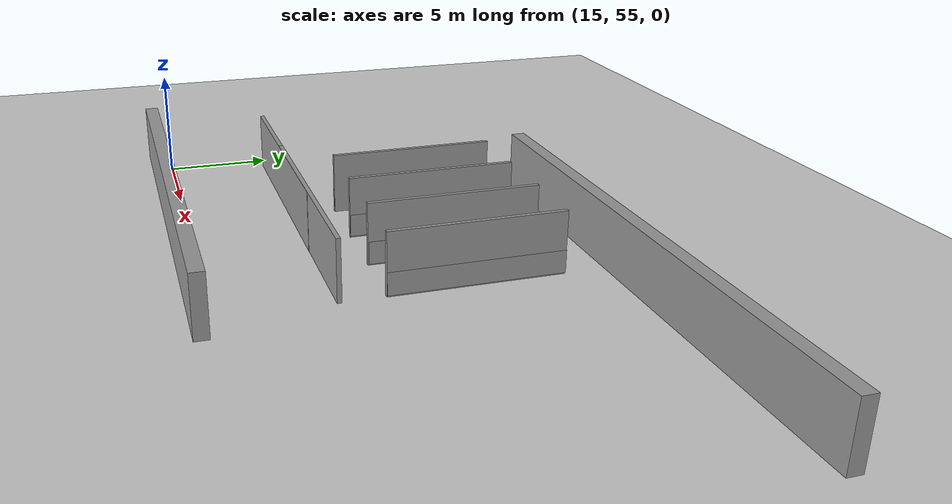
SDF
<sdf version="1.7">
 <world name="default">
  <model name="ground_plane">
   <static>1</static>
   <link name="link">
    <collision name="collision">
     <geometry><plane><normal>0 0 1</normal><size>100 100</size></plane></geometry>
     <surface><friction><ode><mu>100</mu><mu2>50</mu2></ode></friction></surface>
    </collision>
    <visual name="visual">
     <cast_shadows>0</cast_shadows>
     <geometry><plane><normal>0 0 1</normal><size>100 100</size></plane></geometry>
     <material>
      <script><uri>file://media/materials/scripts/gazebo.material</uri><name>Gazebo/Grey</name></script>
     </material>
    </visual>
   </link>
  </model>
  <model name="grey_wall_long_term">
   <link name="link">
    <pose>-1.74587 -0.378849 1.37589 0 -0 0</pose>
    <inertial>
     <inertia><ixx>0</ixx><ixy>0</ixy><ixz>0</ixz><iyy>0</iyy><iyz>0</iyz><izz>0</izz></inertia>
     <mass>0</mass>
    </inertial>
    <visual name="visual">
     <cast_shadows>0</cast_shadows>
     <geometry><box><size>22.1596 0.642976 2.8</size></box></geometry>
     <material>
      <script>
       <uri>model://grey_wall/materials/scripts</uri>
       <uri>model://grey_wall/materials/textures</uri>
       <name>vrc/grey_wall</name>
      </script>
      <shader type="pixel"><normal_map>__default__</normal_map></shader>
      <ambient>1 1 1 1</ambient>
      <diffuse>1 1 1 1</diffuse>
      <specular>0 0 0 1</specular>
      <emissive>0 0 0 1</emissive>
     </material>
    </visual>
    <collision name="collision">
     <geometry><box><size>22.1596 0.642976 2.8</size></box></geometry>
     <surface>
      <friction>
       <ode><mu>1</mu><mu2>1</mu2><fdir1>0 0 0</fdir1><slip1>0</slip1><slip2>0</slip2></ode>
       <torsional>
        <coefficient>1</coefficient>
        <patch_radius>0</patch_radius>
        <surface_radius>0</surface_radius>
        <use_patch_radius>1</use_patch_radius>
        <ode><slip>0</slip></ode>
       </torsional>
      </friction>
      <bounce><restitution_coefficient>0</restitution_coefficient><threshold>1e+06</threshold></bounce>
      <contact>
       <collide_without_contact>0</collide_without_contact>
       <collide_without_contact_bitmask>1</collide_without_contact_bitmask>
       <collide_bitmask>1</collide_bitmask>
       <ode>
        <soft_cfm>0</soft_cfm>
        <soft_erp>0.2</soft_erp>
        <kp>1e+13</kp>
        <kd>1</kd>
        <max_vel>0.01</max_vel>
        <min_depth>0</min_depth>
       </ode>
       <bullet>
        <split_impulse>1</split_impulse>
        <split_impulse_penetration_threshold>-0.01</split_impulse_penetration_threshold>
        <soft_cfm>0</soft_cfm>
        <soft_erp>0.2</soft_erp>
        <kp>1e+13</kp>
        <kd>1</kd>
       </bullet>
      </contact>
     </surface>
    </collision>
   </link>
   <static>1</static>
   <pose>25.4016 54.6879 0 0 -0 0</pose>
  </model>
  <model name="grey_wall_long_2_clone">
   <link name="link">
    <pose>0 0 1.37589 0 -0 0</pose>
    <inertial>
     <inertia><ixx>0</ixx><ixy>0</ixy><ixz>0</ixz><iyy>0</iyy><iyz>0</iyz><izz>0</izz></inertia>
     <mass>0</mass>
    </inertial>
    <visual name="visual">
     <cast_shadows>0</cast_shadows>
     <geometry><box><size>25.8815 0.642976 2.8</size></box></geometry>
     <material>
      <script>
       <uri>model://grey_wall/materials/scripts</uri>
       <uri>model://grey_wall/materials/textures</uri>
       <name>vrc/grey_wall</name>
      </script>
      <shader type="pixel"><normal_map>__default__</normal_map></shader>
      <ambient>1 1 1 1</ambient>
      <diffuse>1 1 1 1</diffuse>
      <specular>0 0 0 1</specular>
      <emissive>0 0 0 1</emissive>
     </material>
    </visual>
    <collision name="collision">
     <geometry><box><size>25.8815 0.642976 2.8</size></box></geometry>
     <surface>
      <friction>
       <ode><mu>1</mu><mu2>1</mu2><fdir1>0 0 0</fdir1><slip1>0</slip1><slip2>0</slip2></ode>
       <torsional>
        <coefficient>1</coefficient>
        <patch_radius>0</patch_radius>
        <surface_radius>0</surface_radius>
        <use_patch_radius>1</use_patch_radius>
        <ode><slip>0</slip></ode>
       </torsional>
      </friction>
      <bounce><restitution_coefficient>0</restitution_coefficient><threshold>1e+06</threshold></bounce>
      <contact>
       <collide_without_contact>0</collide_without_contact>
       <collide_without_contact_bitmask>1</collide_without_contact_bitmask>
       <collide_bitmask>1</collide_bitmask>
       <ode>
        <soft_cfm>0</soft_cfm>
        <soft_erp>0.2</soft_erp>
        <kp>1e+13</kp>
        <kd>1</kd>
        <max_vel>0.01</max_vel>
        <min_depth>0</min_depth>
       </ode>
       <bullet>
        <split_impulse>1</split_impulse>
        <split_impulse_penetration_threshold>-0.01</split_impulse_penetration_threshold>
        <soft_cfm>0</soft_cfm>
        <soft_erp>0.2</soft_erp>
        <kp>1e+13</kp>
        <kd>1</kd>
       </bullet>
      </contact>
     </surface>
    </collision>
   </link>
   <static>1</static>
   <pose>35.559 71.815 0 0 -0 0</pose>
  </model>
  <model name="grey_wall_12m">
   <link name="link">
    <pose>0.289112 -0.003891 1.4 0 -0 0</pose>
    <inertial>
     <inertia><ixx>0</ixx><ixy>0</ixy><ixz>0</ixz><iyy>0</iyy><iyz>0</iyz><izz>0</izz></inertia>
     <mass>0</mass>
    </inertial>
    <visual name="visual">
     <cast_shadows>0</cast_shadows>
     <geometry><box><size>12.0527 0.2 2.8</size></box></geometry>
     <material>
      <script>
       <uri>model://grey_wall/materials/scripts</uri>
       <uri>model://grey_wall/materials/textures</uri>
       <name>vrc/grey_wall</name>
      </script>
      <shader type="pixel"/>
      <ambient>1 1 1 1</ambient>
      <diffuse>1 1 1 1</diffuse>
      <specular>0 0 0 1</specular>
      <emissive>0 0 0 1</emissive>
     </material>
    </visual>
    <collision name="collision">
     <geometry><box><size>12.0527 0.2 2.8</size></box></geometry>
     <surface>
      <friction>
       <ode><mu>1</mu><mu2>1</mu2><fdir1>0 0 0</fdir1><slip1>0</slip1><slip2>0</slip2></ode>
       <torsional>
        <coefficient>1</coefficient>
        <patch_radius>0</patch_radius>
        <surface_radius>0</surface_radius>
        <use_patch_radius>1</use_patch_radius>
        <ode><slip>0</slip></ode>
       </torsional>
      </friction>
      <bounce><restitution_coefficient>0</restitution_coefficient><threshold>1e+06</threshold></bounce>
      <contact>
       <collide_without_contact>0</collide_without_contact>
       <collide_without_contact_bitmask>1</collide_without_contact_bitmask>
       <collide_bitmask>1</collide_bitmask>
       <ode>
        <soft_cfm>0</soft_cfm>
        <soft_erp>0.2</soft_erp>
        <kp>1e+13</kp>
        <kd>1</kd>
        <max_vel>0.01</max_vel>
        <min_depth>0</min_depth>
       </ode>
       <bullet>
        <split_impulse>1</split_impulse>
        <split_impulse_penetration_threshold>-0.01</split_impulse_penetration_threshold>
        <soft_cfm>0</soft_cfm>
        <soft_erp>0.2</soft_erp>
        <kp>1e+13</kp>
        <kd>1</kd>
       </bullet>
      </contact>
     </surface>
    </collision>
   </link>
   <static>1</static>
   <pose>21.5763 59.8868 0 0 -0 0</pose>
  </model>
  <model name="grey_wall_12m_clone">
   <link name="link">
    <pose>0.289112 -0.003891 1.4 0 -0 0</pose>
    <inertial>
     <inertia><ixx>0</ixx><ixy>0</ixy><ixz>0</ixz><iyy>0</iyy><iyz>0</iyz><izz>0</izz></inertia>
     <mass>0</mass>
    </inertial>
    <visual name="visual">
     <cast_shadows>0</cast_shadows>
     <geometry><box><size>12.0527 0.2 2.8</size></box></geometry>
     <material>
      <script>
       <uri>model://grey_wall/materials/scripts</uri>
       <uri>model://grey_wall/materials/textures</uri>
       <name>vrc/grey_wall</name>
      </script>
      <shader type="pixel"/>
      <ambient>1 1 1 1</ambient>
      <diffuse>1 1 1 1</diffuse>
      <specular>0 0 0 1</specular>
      <emissive>0 0 0 1</emissive>
     </material>
    </visual>
    <collision name="collision">
     <geometry><box><size>12.0527 0.2 2.8</size></box></geometry>
     <surface>
      <friction>
       <ode><mu>1</mu><mu2>1</mu2><fdir1>0 0 0</fdir1><slip1>0</slip1><slip2>0</slip2></ode>
       <torsional>
        <coefficient>1</coefficient>
        <patch_radius>0</patch_radius>
        <surface_radius>0</surface_radius>
        <use_patch_radius>1</use_patch_radius>
        <ode><slip>0</slip></ode>
       </torsional>
      </friction>
      <bounce><restitution_coefficient>0</restitution_coefficient><threshold>1e+06</threshold></bounce>
      <contact>
       <collide_without_contact>0</collide_without_contact>
       <collide_without_contact_bitmask>1</collide_without_contact_bitmask>
       <collide_bitmask>1</collide_bitmask>
       <ode>
        <soft_cfm>0</soft_cfm>
        <soft_erp>0.2</soft_erp>
        <kp>1e+13</kp>
        <kd>1</kd>
        <max_vel>0.01</max_vel>
        <min_depth>0</min_depth>
       </ode>
       <bullet>
        <split_impulse>1</split_impulse>
        <split_impulse_penetration_threshold>-0.01</split_impulse_penetration_threshold>
        <soft_cfm>0</soft_cfm>
        <soft_erp>0.2</soft_erp>
        <kp>1e+13</kp>
        <kd>1</kd>
       </bullet>
      </contact>
     </surface>
    </collision>
   </link>
   <static>1</static>
   <pose>26.9249 59.895 0 0 -0 0</pose>
  </model>
  <model name="grey_wall_low_clone_0">
   <link name="link">
    <pose>0.546134 -0.568384 0.521109 0 -0 0</pose>
    <inertial>
     <inertia><ixx>0</ixx><ixy>0</ixy><ixz>0</ixz><iyy>0</iyy><iyz>0</iyz><izz>0</izz></inertia>
     <mass>0</mass>
    </inertial>
    <visual name="visual">
     <cast_shadows>0</cast_shadows>
     <geometry><box><size>7.82417 0.2 1.03493</size></box></geometry>
     <material>
      <script>
       <uri>model://grey_wall/materials/scripts</uri>
       <uri>model://grey_wall/materials/textures</uri>
       <name>vrc/grey_wall</name>
      </script>
      <shader type="pixel"/>
      <ambient>1 1 1 1</ambient>
      <diffuse>1 1 1 1</diffuse>
      <specular>0 0 0 1</specular>
      <emissive>0 0 0 1</emissive>
     </material>
    </visual>
    <collision name="collision">
     <geometry><box><size>7.82417 0.2 1.03493</size></box></geometry>
     <surface>
      <friction>
       <ode><mu>1</mu><mu2>1</mu2><fdir1>0 0 0</fdir1><slip1>0</slip1><slip2>0</slip2></ode>
       <torsional>
        <coefficient>1</coefficient>
        <patch_radius>0</patch_radius>
        <surface_radius>0</surface_radius>
        <use_patch_radius>1</use_patch_radius>
        <ode><slip>0</slip></ode>
       </torsional>
      </friction>
      <bounce><restitution_coefficient>0</restitution_coefficient><threshold>1e+06</threshold></bounce>
      <contact>
       <collide_without_contact>0</collide_without_contact>
       <collide_without_contact_bitmask>1</collide_without_contact_bitmask>
       <collide_bitmask>1</collide_bitmask>
       <ode>
        <soft_cfm>0</soft_cfm>
        <soft_erp>0.2</soft_erp>
        <kp>1e+13</kp>
        <kd>1</kd>
        <max_vel>0.01</max_vel>
        <min_depth>0</min_depth>
       </ode>
       <bullet>
        <split_impulse>1</split_impulse>
        <split_impulse_penetration_threshold>-0.01</split_impulse_penetration_threshold>
        <soft_cfm>0</soft_cfm>
        <soft_erp>0.2</soft_erp>
        <kp>1e+13</kp>
        <kd>1</kd>
       </bullet>
      </contact>
     </surface>
    </collision>
   </link>
   <static>1</static>
   <pose>23.9356 66.4695 -0 0 0 -1.56746</pose>
  </model>
  <model name="grey_wall_low_clone_1">
   <link name="link">
    <pose>0.546134 -0.568384 0.521109 0 -0 0</pose>
    <inertial>
     <inertia><ixx>0</ixx><ixy>0</ixy><ixz>0</ixz><iyy>0</iyy><iyz>0</iyz><izz>0</izz></inertia>
     <mass>0</mass>
    </inertial>
    <visual name="visual">
     <cast_shadows>0</cast_shadows>
     <geometry><box><size>7.82417 0.2 1.03493</size></box></geometry>
     <material>
      <script>
       <uri>model://grey_wall/materials/scripts</uri>
       <uri>model://grey_wall/materials/textures</uri>
       <name>vrc/grey_wall</name>
      </script>
      <shader type="pixel"/>
      <ambient>1 1 1 1</ambient>
      <diffuse>1 1 1 1</diffuse>
      <specular>0 0 0 1</specular>
      <emissive>0 0 0 1</emissive>
     </material>
    </visual>
    <collision name="collision">
     <geometry><box><size>7.82417 0.2 1.03493</size></box></geometry>
     <surface>
      <friction>
       <ode><mu>1</mu><mu2>1</mu2><fdir1>0 0 0</fdir1><slip1>0</slip1><slip2>0</slip2></ode>
       <torsional>
        <coefficient>1</coefficient>
        <patch_radius>0</patch_radius>
        <surface_radius>0</surface_radius>
        <use_patch_radius>1</use_patch_radius>
        <ode><slip>0</slip></ode>
       </torsional>
      </friction>
      <bounce><restitution_coefficient>0</restitution_coefficient><threshold>1e+06</threshold></bounce>
      <contact>
       <collide_without_contact>0</collide_without_contact>
       <collide_without_contact_bitmask>1</collide_without_contact_bitmask>
       <collide_bitmask>1</collide_bitmask>
       <ode>
        <soft_cfm>0</soft_cfm>
        <soft_erp>0.2</soft_erp>
        <kp>1e+13</kp>
        <kd>1</kd>
        <max_vel>0.01</max_vel>
        <min_depth>0</min_depth>
       </ode>
       <bullet>
        <split_impulse>1</split_impulse>
        <split_impulse_penetration_threshold>-0.01</split_impulse_penetration_threshold>
        <soft_cfm>0</soft_cfm>
        <soft_erp>0.2</soft_erp>
        <kp>1e+13</kp>
        <kd>1</kd>
       </bullet>
      </contact>
     </surface>
    </collision>
   </link>
   <static>1</static>
   <pose>27.2521 66.4319 -0 0 0 -1.56746</pose>
  </model>
  <model name="grey_wall_low_clone_2">
   <link name="link">
    <pose>0.546134 -0.568384 0.521109 0 -0 0</pose>
    <inertial>
     <inertia><ixx>0</ixx><ixy>0</ixy><ixz>0</ixz><iyy>0</iyy><iyz>0</iyz><izz>0</izz></inertia>
     <mass>0</mass>
    </inertial>
    <visual name="visual">
     <cast_shadows>0</cast_shadows>
     <geometry><box><size>7.82417 0.2 1.03493</size></box></geometry>
     <material>
      <script>
       <uri>model://grey_wall/materials/scripts</uri>
       <uri>model://grey_wall/materials/textures</uri>
       <name>vrc/grey_wall</name>
      </script>
      <shader type="pixel"/>
      <ambient>1 1 1 1</ambient>
      <diffuse>1 1 1 1</diffuse>
      <specular>0 0 0 1</specular>
      <emissive>0 0 0 1</emissive>
     </material>
    </visual>
    <collision name="collision">
     <geometry><box><size>7.82417 0.2 1.03493</size></box></geometry>
     <surface>
      <friction>
       <ode><mu>1</mu><mu2>1</mu2><fdir1>0 0 0</fdir1><slip1>0</slip1><slip2>0</slip2></ode>
       <torsional>
        <coefficient>1</coefficient>
        <patch_radius>0</patch_radius>
        <surface_radius>0</surface_radius>
        <use_patch_radius>1</use_patch_radius>
        <ode><slip>0</slip></ode>
       </torsional>
      </friction>
      <bounce><restitution_coefficient>0</restitution_coefficient><threshold>1e+06</threshold></bounce>
      <contact>
       <collide_without_contact>0</collide_without_contact>
       <collide_without_contact_bitmask>1</collide_without_contact_bitmask>
       <collide_bitmask>1</collide_bitmask>
       <ode>
        <soft_cfm>0</soft_cfm>
        <soft_erp>0.2</soft_erp>
        <kp>1e+13</kp>
        <kd>1</kd>
        <max_vel>0.01</max_vel>
        <min_depth>0</min_depth>
       </ode>
       <bullet>
        <split_impulse>1</split_impulse>
        <split_impulse_penetration_threshold>-0.01</split_impulse_penetration_threshold>
        <soft_cfm>0</soft_cfm>
        <soft_erp>0.2</soft_erp>
        <kp>1e+13</kp>
        <kd>1</kd>
       </bullet>
      </contact>
     </surface>
    </collision>
   </link>
   <static>1</static>
   <pose>30.4505 66.4333 -0 0 0 -1.56746</pose>
  </model>
  <model name="grey_wall_low_clone_3">
   <link name="link">
    <pose>0.546134 -0.568384 0.521109 0 -0 0</pose>
    <inertial>
     <inertia><ixx>0</ixx><ixy>0</ixy><ixz>0</ixz><iyy>0</iyy><iyz>0</iyz><izz>0</izz></inertia>
     <mass>0</mass>
    </inertial>
    <visual name="visual">
     <cast_shadows>0</cast_shadows>
     <geometry><box><size>7.82417 0.2 1.03493</size></box></geometry>
     <material>
      <script>
       <uri>model://grey_wall/materials/scripts</uri>
       <uri>model://grey_wall/materials/textures</uri>
       <name>vrc/grey_wall</name>
      </script>
      <shader type="pixel"/>
      <ambient>1 1 1 1</ambient>
      <diffuse>1 1 1 1</diffuse>
      <specular>0 0 0 1</specular>
      <emissive>0 0 0 1</emissive>
     </material>
    </visual>
    <collision name="collision">
     <geometry><box><size>7.82417 0.2 1.03493</size></box></geometry>
     <surface>
      <friction>
       <ode><mu>1</mu><mu2>1</mu2><fdir1>0 0 0</fdir1><slip1>0</slip1><slip2>0</slip2></ode>
       <torsional>
        <coefficient>1</coefficient>
        <patch_radius>0</patch_radius>
        <surface_radius>0</surface_radius>
        <use_patch_radius>1</use_patch_radius>
        <ode><slip>0</slip></ode>
       </torsional>
      </friction>
      <bounce><restitution_coefficient>0</restitution_coefficient><threshold>1e+06</threshold></bounce>
      <contact>
       <collide_without_contact>0</collide_without_contact>
       <collide_without_contact_bitmask>1</collide_without_contact_bitmask>
       <collide_bitmask>1</collide_bitmask>
       <ode>
        <soft_cfm>0</soft_cfm>
        <soft_erp>0.2</soft_erp>
        <kp>1e+13</kp>
        <kd>1</kd>
        <max_vel>0.01</max_vel>
        <min_depth>0</min_depth>
       </ode>
       <bullet>
        <split_impulse>1</split_impulse>
        <split_impulse_penetration_threshold>-0.01</split_impulse_penetration_threshold>
        <soft_cfm>0</soft_cfm>
        <soft_erp>0.2</soft_erp>
        <kp>1e+13</kp>
        <kd>1</kd>
       </bullet>
      </contact>
     </surface>
    </collision>
   </link>
   <static>1</static>
   <pose>33.621 66.3367 -0 0 0 -1.56746</pose>
  </model>
  <model name="grey_wall_high_clone_0">
   <link name="link">
    <pose>0.546134 -0.568384 0.521109 0 -0 0</pose>
    <inertial>
     <inertia><ixx>0</ixx><ixy>0</ixy><ixz>0</ixz><iyy>0</iyy><iyz>0</iyz><izz>0</izz></inertia>
     <mass>0</mass>
    </inertial>
    <visual name="visual">
     <cast_shadows>0</cast_shadows>
     <geometry><box><size>7.82417 0.2 4.57376</size></box></geometry>
     <material>
      <script>
       <uri>model://grey_wall/materials/scripts</uri>
       <uri>model://grey_wall/materials/textures</uri>
       <name>vrc/grey_wall</name>
      </script>
      <shader type="pixel"/>
      <ambient>1 1 1 1</ambient>
      <diffuse>1 1 1 1</diffuse>
      <specular>0 0 0 1</specular>
      <emissive>0 0 0 1</emissive>
     </material>
    </visual>
    <collision name="collision">
     <geometry><box><size>7.82417 0.2 4.57376</size></box></geometry>
     <surface>
      <friction>
       <ode><mu>1</mu><mu2>1</mu2><fdir1>0 0 0</fdir1><slip1>0</slip1><slip2>0</slip2></ode>
       <torsional>
        <coefficient>1</coefficient>
        <patch_radius>0</patch_radius>
        <surface_radius>0</surface_radius>
        <use_patch_radius>1</use_patch_radius>
        <ode><slip>0</slip></ode>
       </torsional>
      </friction>
      <bounce><restitution_coefficient>0</restitution_coefficient><threshold>1e+06</threshold></bounce>
      <contact>
       <collide_without_contact>0</collide_without_contact>
       <collide_without_contact_bitmask>1</collide_without_contact_bitmask>
       <collide_bitmask>1</collide_bitmask>
       <ode>
        <soft_cfm>0</soft_cfm>
        <soft_erp>0.2</soft_erp>
        <kp>1e+13</kp>
        <kd>1</kd>
        <max_vel>0.01</max_vel>
        <min_depth>0</min_depth>
       </ode>
       <bullet>
        <split_impulse>1</split_impulse>
        <split_impulse_penetration_threshold>-0.01</split_impulse_penetration_threshold>
        <soft_cfm>0</soft_cfm>
        <soft_erp>0.2</soft_erp>
        <kp>1e+13</kp>
        <kd>1</kd>
       </bullet>
      </contact>
     </surface>
    </collision>
   </link>
   <static>1</static>
   <pose>23.9508 66.4756 0 0 0 -1.56746</pose>
  </model>
  <model name="grey_wall_high_clone_1">
   <link name="link">
    <pose>0.546134 -0.568384 0.521109 0 -0 0</pose>
    <inertial>
     <inertia><ixx>0</ixx><ixy>0</ixy><ixz>0</ixz><iyy>0</iyy><iyz>0</iyz><izz>0</izz></inertia>
     <mass>0</mass>
    </inertial>
    <visual name="visual">
     <cast_shadows>0</cast_shadows>
     <geometry><box><size>7.82417 0.2 4.57376</size></box></geometry>
     <material>
      <script>
       <uri>model://grey_wall/materials/scripts</uri>
       <uri>model://grey_wall/materials/textures</uri>
       <name>vrc/grey_wall</name>
      </script>
      <shader type="pixel"/>
      <ambient>1 1 1 1</ambient>
      <diffuse>1 1 1 1</diffuse>
      <specular>0 0 0 1</specular>
      <emissive>0 0 0 1</emissive>
     </material>
    </visual>
    <collision name="collision">
     <geometry><box><size>7.82417 0.2 4.57376</size></box></geometry>
     <surface>
      <friction>
       <ode><mu>1</mu><mu2>1</mu2><fdir1>0 0 0</fdir1><slip1>0</slip1><slip2>0</slip2></ode>
       <torsional>
        <coefficient>1</coefficient>
        <patch_radius>0</patch_radius>
        <surface_radius>0</surface_radius>
        <use_patch_radius>1</use_patch_radius>
        <ode><slip>0</slip></ode>
       </torsional>
      </friction>
      <bounce><restitution_coefficient>0</restitution_coefficient><threshold>1e+06</threshold></bounce>
      <contact>
       <collide_without_contact>0</collide_without_contact>
       <collide_without_contact_bitmask>1</collide_without_contact_bitmask>
       <collide_bitmask>1</collide_bitmask>
       <ode>
        <soft_cfm>0</soft_cfm>
        <soft_erp>0.2</soft_erp>
        <kp>1e+13</kp>
        <kd>1</kd>
        <max_vel>0.01</max_vel>
        <min_depth>0</min_depth>
       </ode>
       <bullet>
        <split_impulse>1</split_impulse>
        <split_impulse_penetration_threshold>-0.01</split_impulse_penetration_threshold>
        <soft_cfm>0</soft_cfm>
        <soft_erp>0.2</soft_erp>
        <kp>1e+13</kp>
        <kd>1</kd>
       </bullet>
      </contact>
     </surface>
    </collision>
   </link>
   <static>1</static>
   <pose>27.2519 66.4118 0 0 0 -1.56746</pose>
  </model>
  <model name="grey_wall_high_clone_2">
   <link name="link">
    <pose>0.546134 -0.568384 0.521109 0 -0 0</pose>
    <inertial>
     <inertia><ixx>0</ixx><ixy>0</ixy><ixz>0</ixz><iyy>0</iyy><iyz>0</iyz><izz>0</izz></inertia>
     <mass>0</mass>
    </inertial>
    <visual name="visual">
     <cast_shadows>0</cast_shadows>
     <geometry><box><size>7.82417 0.2 4.57376</size></box></geometry>
     <material>
      <script>
       <uri>model://grey_wall/materials/scripts</uri>
       <uri>model://grey_wall/materials/textures</uri>
       <name>vrc/grey_wall</name>
      </script>
      <shader type="pixel"/>
      <ambient>1 1 1 1</ambient>
      <diffuse>1 1 1 1</diffuse>
      <specular>0 0 0 1</specular>
      <emissive>0 0 0 1</emissive>
     </material>
    </visual>
    <collision name="collision">
     <geometry><box><size>7.82417 0.2 4.57376</size></box></geometry>
     <surface>
      <friction>
       <ode><mu>1</mu><mu2>1</mu2><fdir1>0 0 0</fdir1><slip1>0</slip1><slip2>0</slip2></ode>
       <torsional>
        <coefficient>1</coefficient>
        <patch_radius>0</patch_radius>
        <surface_radius>0</surface_radius>
        <use_patch_radius>1</use_patch_radius>
        <ode><slip>0</slip></ode>
       </torsional>
      </friction>
      <bounce><restitution_coefficient>0</restitution_coefficient><threshold>1e+06</threshold></bounce>
      <contact>
       <collide_without_contact>0</collide_without_contact>
       <collide_without_contact_bitmask>1</collide_without_contact_bitmask>
       <collide_bitmask>1</collide_bitmask>
       <ode>
        <soft_cfm>0</soft_cfm>
        <soft_erp>0.2</soft_erp>
        <kp>1e+13</kp>
        <kd>1</kd>
        <max_vel>0.01</max_vel>
        <min_depth>0</min_depth>
       </ode>
       <bullet>
        <split_impulse>1</split_impulse>
        <split_impulse_penetration_threshold>-0.01</split_impulse_penetration_threshold>
        <soft_cfm>0</soft_cfm>
        <soft_erp>0.2</soft_erp>
        <kp>1e+13</kp>
        <kd>1</kd>
       </bullet>
      </contact>
     </surface>
    </collision>
   </link>
   <static>1</static>
   <pose>30.4477 66.3915 0 0 0 -1.56746</pose>
  </model>
  <model name="grey_wall_high_clone_3">
   <link name="link">
    <pose>0.546134 -0.568384 0.521109 0 -0 0</pose>
    <inertial>
     <inertia><ixx>0</ixx><ixy>0</ixy><ixz>0</ixz><iyy>0</iyy><iyz>0</iyz><izz>0</izz></inertia>
     <mass>0</mass>
    </inertial>
    <visual name="visual">
     <cast_shadows>0</cast_shadows>
     <geometry><box><size>7.82417 0.2 4.57376</size></box></geometry>
     <material>
      <script>
       <uri>model://grey_wall/materials/scripts</uri>
       <uri>model://grey_wall/materials/textures</uri>
       <name>vrc/grey_wall</name>
      </script>
      <shader type="pixel"/>
      <ambient>1 1 1 1</ambient>
      <diffuse>1 1 1 1</diffuse>
      <specular>0 0 0 1</specular>
      <emissive>0 0 0 1</emissive>
     </material>
    </visual>
    <collision name="collision">
     <geometry><box><size>7.82417 0.2 4.57376</size></box></geometry>
     <surface>
      <friction>
       <ode><mu>1</mu><mu2>1</mu2><fdir1>0 0 0</fdir1><slip1>0</slip1><slip2>0</slip2></ode>
       <torsional>
        <coefficient>1</coefficient>
        <patch_radius>0</patch_radius>
        <surface_radius>0</surface_radius>
        <use_patch_radius>1</use_patch_radius>
        <ode><slip>0</slip></ode>
       </torsional>
      </friction>
      <bounce><restitution_coefficient>0</restitution_coefficient><threshold>1e+06</threshold></bounce>
      <contact>
       <collide_without_contact>0</collide_without_contact>
       <collide_without_contact_bitmask>1</collide_without_contact_bitmask>
       <collide_bitmask>1</collide_bitmask>
       <ode>
        <soft_cfm>0</soft_cfm>
        <soft_erp>0.2</soft_erp>
        <kp>1e+13</kp>
        <kd>1</kd>
        <max_vel>0.01</max_vel>
        <min_depth>0</min_depth>
       </ode>
       <bullet>
        <split_impulse>1</split_impulse>
        <split_impulse_penetration_threshold>-0.01</split_impulse_penetration_threshold>
        <soft_cfm>0</soft_cfm>
        <soft_erp>0.2</soft_erp>
        <kp>1e+13</kp>
        <kd>1</kd>
       </bullet>
      </contact>
     </surface>
    </collision>
   </link>
   <static>1</static>
   <pose>33.621 66.3195 0 0 0 -1.56746</pose>
  </model>
 </world>
</sdf>
